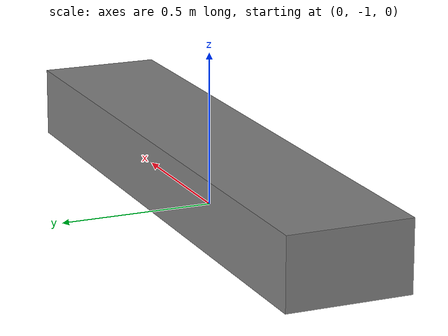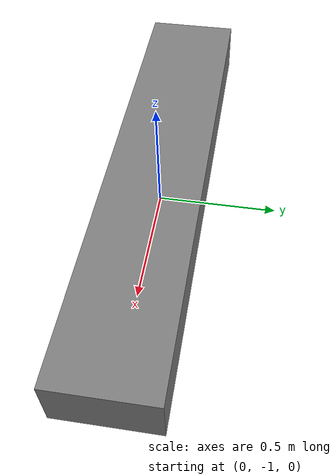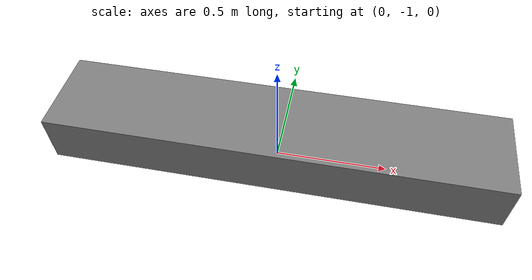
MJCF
<mujoco>

    <worldbody>
        <body name="front_object_table" pos="0 0 0" euler="0 0 0">
            <geom name="front_object_table" size="1.0 0.2 0.115" pos="0 -1 0.115" type="box" rgba="0.5 0.5 0.5 1"
                  friction="0.3 0.05 0.005" margin="0.001"/>
            <inertial pos="0 0 0" mass="1" diaginertia="0 0 0" />
           <!-- Aim ~12 cm above ee_site z (same xy) so frame looks slightly higher than straight-at-ee. -->
           <body name="agentview_bracket" pos="0.30 -1.5 1">
                <inertial pos="0 0 0" mass="0.01" diaginertia="1e-6 1e-6 1e-6"/>
                <geom name="agentview_housing" type="box" size="0.055 0.055 0.018" pos="0 0 0" rgba="0.2 0.2 0.22 0" contype="0" conaffinity="0" group="1"/>
                <camera name="agentview" pos="0 0 0" xyaxes="0.999969 -0.007822 0  0.005522 0.705886 0.708304" fovy="55"/>
            </body>
        </body>
    </worldbody>

</mujoco>
